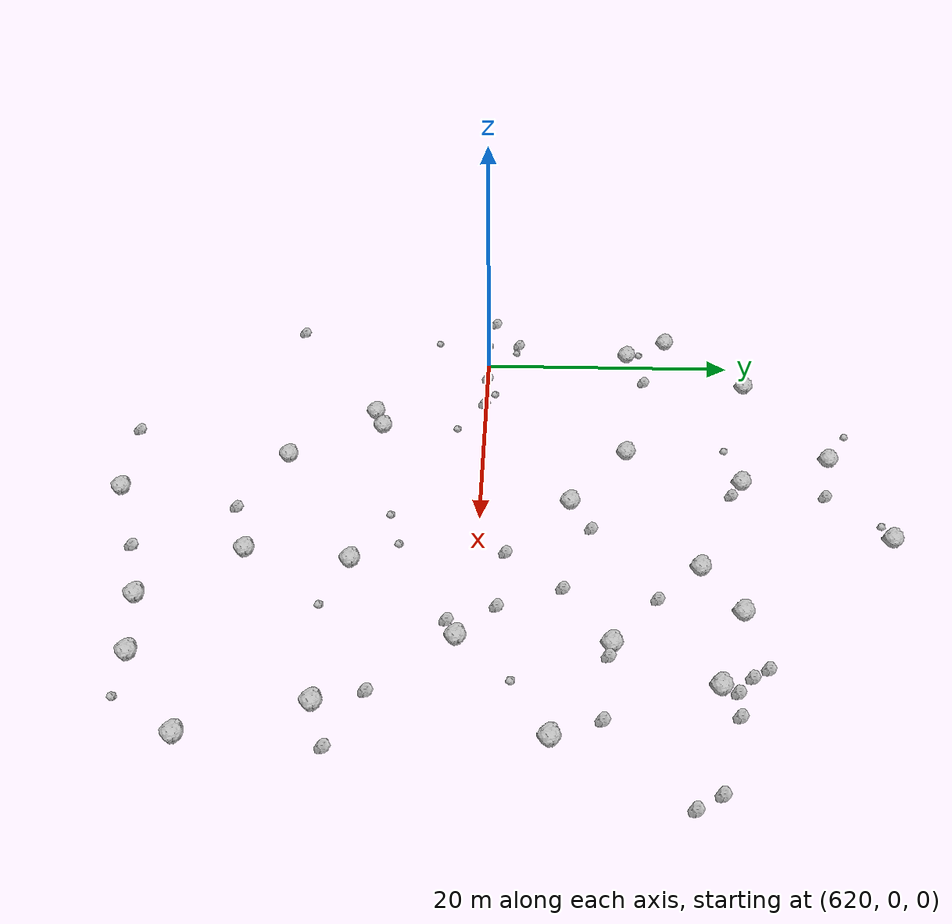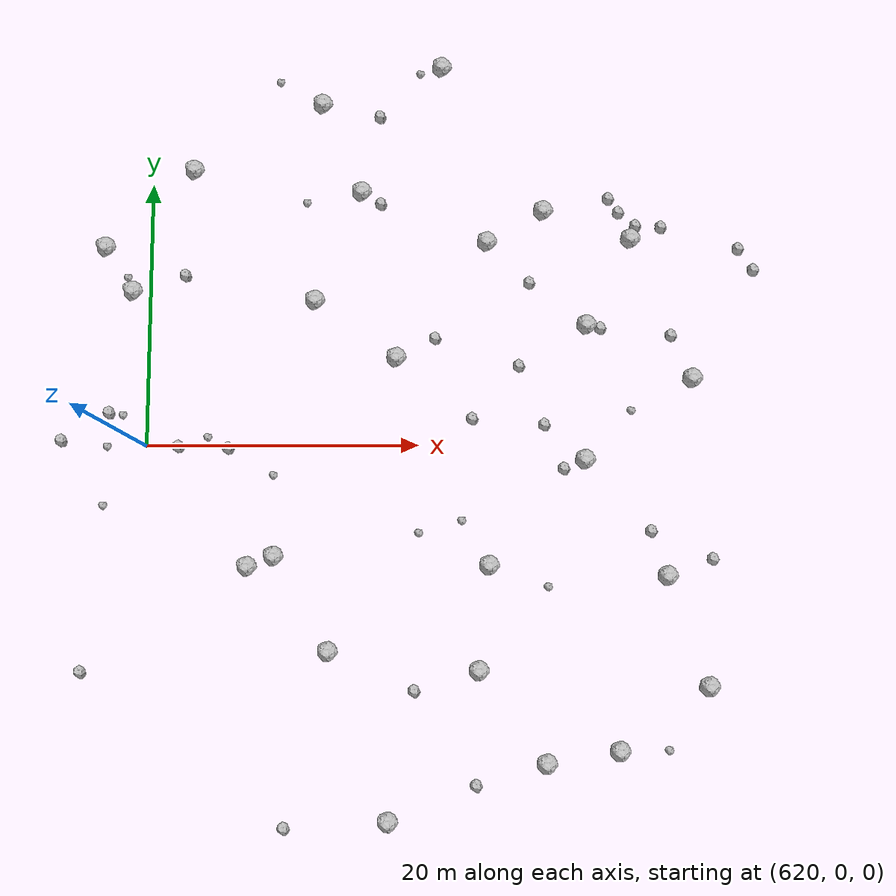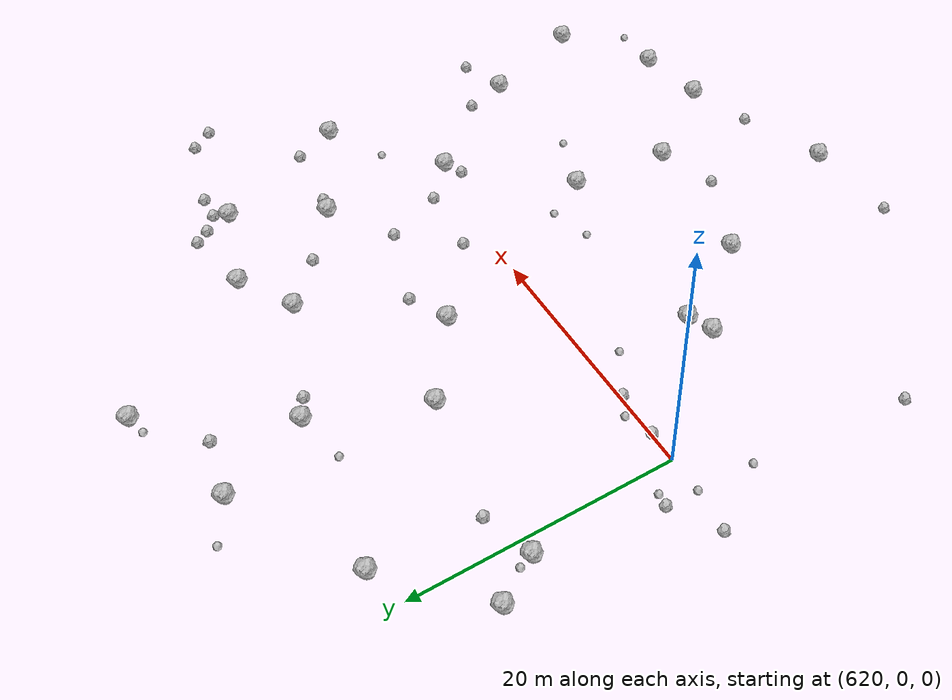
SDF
<sdf version="1.6">
 <world name="default">
  <include><uri>model://sun</uri></include>
  <model name="rock1_16_3">
   <include><uri>model://rock1</uri><pose>629.4463276755683 -8.072439245872573 0.5 0 0 0</pose></include>
  </model>
  <model name="rock1_16_4">
   <include><uri>model://rock1</uri><pose>632.8868513472603 26.27511732522168 0.5 0 0 0</pose></include>
  </model>
  <model name="rock1_16_5">
   <include><uri>model://rock1</uri><pose>633.4132204129068 -14.89702300400454 0.5 0 0 0</pose></include>
  </model>
  <model name="rock1_16_6">
   <include><uri>model://rock1</uri><pose>652.5832876967611 8.970133718100804 0.5 0 0 0</pose></include>
  </model>
  <model name="rock1_16_7">
   <include><uri>model://rock1</uri><pose>616.6473163360603 15.090707470981528 0.5 0 0 0</pose></include>
  </model>
  <model name="rock1_16_8">
   <include><uri>model://rock1</uri><pose>660.7220849169667 -17.472069545830706 0.5 0 0 0</pose></include>
  </model>
  <model name="rock1_16_9">
   <include><uri>model://rock1</uri><pose>638.4104002371489 6.551919143346801 0.5 0 0 0</pose></include>
  </model>
  <model name="rock1_16_10">
   <include><uri>model://rock1</uri><pose>641.9889381994108 29.19010480322629 0.5 0 0 0</pose></include>
  </model>
  <model name="rock1_16_11">
   <include><uri>model://rock1</uri><pose>654.207015503397 -21.936673308735486 0.5 0 0 0</pose></include>
  </model>
  <model name="rock1_16_12">
   <include><uri>model://rock1</uri><pose>658.010875635116 -9.599261513641942 0.5 0 0 0</pose></include>
  </model>
  <model name="rock1_16_13">
   <include><uri>model://rock1</uri><pose>632.3666782916805 10.931630357782694 0.5 0 0 0</pose></include>
  </model>
  <model name="rock1_16_14">
   <include><uri>model://rock1</uri><pose>649.5199034525817 17.77297365636167 0.5 0 0 0</pose></include>
  </model>
  <model name="rock1_16_15">
   <include><uri>model://rock1</uri><pose>627.5402131475925 -8.80868629811588 0.5 0 0 0</pose></include>
  </model>
  <model name="rock1_16_16">
   <include><uri>model://rock1</uri><pose>623.1869553942457 21.0733600436169 0.5 0 0 0</pose></include>
  </model>
  <model name="rock1_16_17">
   <include><uri>model://rock1</uri><pose>645.2556006826771 15.373313714025109 0.5 0 0 0</pose></include>
  </model>
  <model name="rock1_16_18">
   <include><uri>model://rock1</uri><pose>648.9998104994363 -22.786923275945945 0.5 0 0 0</pose></include>
  </model>
  <model name="rock1_16_19">
   <include><uri>model://rock1</uri><pose>644.2590103139021 -16.289803843653367 0.5 0 0 0</pose></include>
  </model>
  <model name="rock1_16_20">
   <include><uri>model://rock1</uri><pose>660.3240180557109 4.899470530275067 0.5 0 0 0</pose></include>
  </model>
  <model name="rock1_16_21">
   <include><uri>model://rock1</uri><pose>618.7488322074255 11.691062582928382 0.5 0 0 0</pose></include>
  </model>
  <model name="rock1_16_22">
   <include><uri>model://rock1</uri><pose>652.254000721736 -1.1133624928259387 0.5 0 0 0</pose></include>
  </model>
  <model name="rock1_16_23">
   <include><uri>model://rock1</uri><pose>635.8559221207722 19.323858849487607 0.5 0 0 0</pose></include>
  </model>
  <model name="rock1_16_24">
   <include><uri>model://rock1</uri><pose>637.685062285718 -26.709693507945925 0.5 0 0 0</pose></include>
  </model>
  <model name="rock1_16_25">
   <include><uri>model://rock1</uri><pose>656.0375023810612 15.565404568933182 0.5 0 0 0</pose></include>
  </model>
  <model name="rock1_16_26">
   <include><uri>model://rock1</uri><pose>645.1061917334051 -8.800219008310997 0.5 0 0 0</pose></include>
  </model>
  <model name="rock2_16_0">
   <include><uri>model://rock2</uri><pose>641.3069023205206 8.005150839985419 0.3 0 0 0</pose></include>
  </model>
  <model name="rock2_16_1">
   <include><uri>model://rock2</uri><pose>664.1281678793493 14.781459356405385 0.3 0 0 0</pose></include>
  </model>
  <model name="rock2_16_2">
   <include><uri>model://rock2</uri><pose>639.6005375203785 -17.71338664353072 0.3 0 0 0</pose></include>
  </model>
  <model name="rock2_16_3">
   <include><uri>model://rock2</uri><pose>655.1995981157783 17.647034471346693 0.3 0 0 0</pose></include>
  </model>
  <model name="rock2_16_4">
   <include><uri>model://rock2</uri><pose>653.6188821465156 8.729675007303562 0.3 0 0 0</pose></include>
  </model>
  <model name="rock2_16_5">
   <include><uri>model://rock2</uri><pose>643.9947379165224 1.952410394859875 0.3 0 0 0</pose></include>
  </model>
  <model name="rock2_16_6">
   <include><uri>model://rock2</uri><pose>613.721230946836 0.46060264129690154 0.3 0 0 0</pose></include>
  </model>
  <model name="rock2_16_7">
   <include><uri>model://rock2</uri><pose>626.0193356452431 -0.1553386256569702 0.3 0 0 0</pose></include>
  </model>
  <model name="rock2_16_8">
   <include><uri>model://rock2</uri><pose>622.3526748083312 -0.01969880926978007 0.3 0 0 0</pose></include>
  </model>
  <model name="rock2_16_9">
   <include><uri>model://rock2</uri><pose>658.3742916539385 16.491751953763668 0.3 0 0 0</pose></include>
  </model>
  <model name="rock2_16_10">
   <include><uri>model://rock2</uri><pose>665.2021222151533 13.141734214480536 0.3 0 0 0</pose></include>
  </model>
  <model name="rock2_16_11">
   <include><uri>model://rock2</uri><pose>643.9692863777706 -24.28943094263356 0.3 0 0 0</pose></include>
  </model>
  <model name="rock2_16_12">
   <include><uri>model://rock2</uri><pose>637.2381347289316 25.304166084714744 0.3 0 0 0</pose></include>
  </model>
  <model name="rock2_16_13">
   <include><uri>model://rock2</uri><pose>630.3427220886045 -27.153515419179318 0.3 0 0 0</pose></include>
  </model>
  <model name="rock2_16_14">
   <include><uri>model://rock2</uri><pose>647.5016460333138 5.89432144152407 0.3 0 0 0</pose></include>
  </model>
  <model name="rock2_16_15">
   <include><uri>model://rock2</uri><pose>622.6317424395036 12.898407618571156 0.3 0 0 0</pose></include>
  </model>
  <model name="rock2_16_16">
   <include><uri>model://rock2</uri><pose>658.8612110581175 8.154304654979661 0.3 0 0 0</pose></include>
  </model>
  <model name="rock2_16_17">
   <include><uri>model://rock2</uri><pose>615.6584666343023 -16.27299475165536 0.3 0 0 0</pose></include>
  </model>
  <model name="rock2_16_18">
   <include><uri>model://rock2</uri><pose>650.6824941040757 -1.77572501927418 0.3 0 0 0</pose></include>
  </model>
  <model name="rock2_16_19">
   <include><uri>model://rock2</uri><pose>637.2894188527367 18.41376757060904 0.3 0 0 0</pose></include>
  </model>
  <model name="rock2_16_20">
   <include><uri>model://rock2</uri><pose>661.3495152809412 -8.415109419702404 0.3 0 0 0</pose></include>
  </model>
  <model name="rock2_16_21">
   <include><uri>model://rock2</uri><pose>654.4680151167274 18.734794785302064 0.3 0 0 0</pose></include>
  </model>
  <model name="rock2_16_22">
   <include><uri>model://rock2</uri><pose>617.1822841383195 2.515144743969252 0.3 0 0 0</pose></include>
  </model>
  <model name="rock2_16_23">
   <include><uri>model://rock2</uri><pose>648.3782644554162 12.21936218200424 0.3 0 0 0</pose></include>
  </model>
  <model name="rock2_16_24">
   <include><uri>model://rock2</uri><pose>656.4604354026923 16.603000780072747 0.3 0 0 0</pose></include>
  </model>
  <model name="rock2_16_25">
   <include><uri>model://rock2</uri><pose>649.3101257974681 1.479139742625101 0.3 0 0 0</pose></include>
  </model>
  <model name="rock2_16_26">
   <include><uri>model://rock2</uri><pose>656.9385422916175 -6.377821156426478 0.3 0 0 0</pose></include>
  </model>
  <model name="rock3_16_0">
   <include><uri>model://rock3</uri><pose>639.9767570156032 -6.459718712928126 0.2 0 0 0</pose></include>
  </model>
  <model name="rock3_16_1">
   <include><uri>model://rock3</uri><pose>617.087308920172 -0.00760969084612384 0.2 0 0 0</pose></include>
  </model>
  <model name="rock3_16_2">
   <include><uri>model://rock3</uri><pose>631.6846525609989 18.51818144024928 0.2 0 0 0</pose></include>
  </model>
  <model name="rock3_16_3">
   <include><uri>model://rock3</uri><pose>640.3288042184543 28.759056995651896 0.2 0 0 0</pose></include>
  </model>
  <model name="rock3_16_4">
   <include><uri>model://rock3</uri><pose>629.3376089117492 -2.1960002412969324 0.2 0 0 0</pose></include>
  </model>
  <model name="rock3_16_5">
   <include><uri>model://rock3</uri><pose>649.3440596747945 -10.385033281455055 0.2 0 0 0</pose></include>
  </model>
  <model name="rock3_16_6">
   <include><uri>model://rock3</uri><pose>624.4868591462239 0.6436456014102596 0.2 0 0 0</pose></include>
  </model>
  <model name="rock3_16_7">
   <include><uri>model://rock3</uri><pose>629.5927077704729 28.1344626846817 0.2 0 0 0</pose></include>
  </model>
  <model name="rock3_16_8">
   <include><uri>model://rock3</uri><pose>643.1298786348701 -5.580016498561449 0.2 0 0 0</pose></include>
  </model>
  <model name="rock3_16_9">
   <include><uri>model://rock3</uri><pose>618.1797030841805 2.3231953558015164 0.2 0 0 0</pose></include>
  </model>
  <model name="rock3_16_10">
   <include><uri>model://rock3</uri><pose>616.8861206145353 -4.358937245454474 0.2 0 0 0</pose></include>
  </model>
  <model name="rock3_16_11">
   <include><uri>model://rock3</uri><pose>618.2702244907058 12.763211637799792 0.2 0 0 0</pose></include>
  </model>
  <model name="rock3_16_12">
   <include><uri>model://rock3</uri><pose>657.718451934334 -21.95732711697935 0.2 0 0 0</pose></include>
  </model>
  <model name="rock3_16_13">
   <include><uri>model://rock3</uri><pose>655.7340883548701 2.5050605485980597 0.2 0 0 0</pose></include>
  </model>
 </world>
</sdf>
